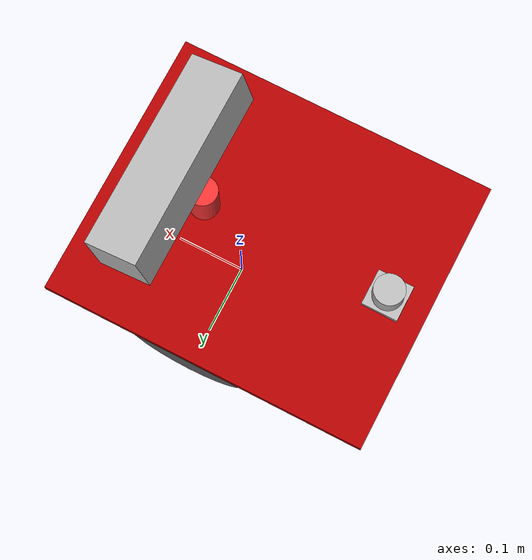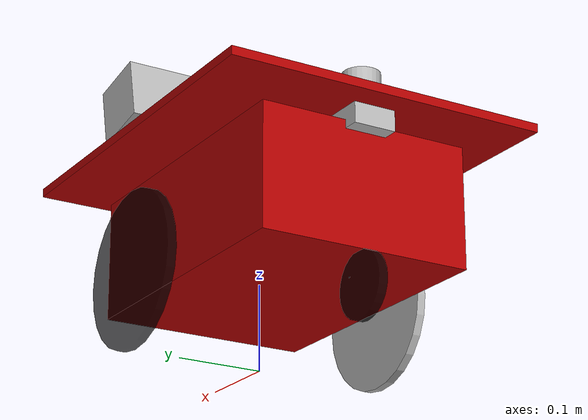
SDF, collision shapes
<?xml version='1.0'?>
<sdf version='1.6'>
    <model name='Nerpio_2wd'>
        <link name='chassis'>
            <pose frame=''>0 0 0 0 -0 0</pose>
            <inertial>
                <pose frame=''>-0.049981 0 0.000673 0 -0 0</pose>
                <mass>3.51011</mass>
                <inertia>
                    <ixx>3.00055</ixx>
                    <ixy>0</ixy>
                    <ixz>0</ixz>
                    <iyy>3.00055</iyy>
                    <iyz>0</iyz>
                    <izz>3</izz>
                </inertia>
            </inertial>
            <self_collide>0</self_collide>
            <kinematic>0</kinematic>
            <visual name='visual'>
                <pose frame=''>-0.045 0 0.148 0 -0 0</pose>
                <geometry>
                    <mesh>
                        <scale>1 1 1</scale>
                        <uri>model://nerpio_2wd/meshes/chassis.stl</uri>
                    </mesh>
                </geometry>
                <cast_shadows>1</cast_shadows>
                <transparency>0</transparency>
                <material>
                    <ambient>1 0.2 0.2 0</ambient>
                    <diffuse>0.7 0 0 0</diffuse>
                    <specular>1 0.2 0.2 1</specular>
                    <emissive>0 0 0 1</emissive>
                    <script>
                        <name>ModelPreview_1::chassis::visual_MATERIAL_</name>
                        <uri>__default__</uri>
                    </script>
                    <shader type='vertex'>
                        <normal_map>__default__</normal_map>
                    </shader>
                </material>
            </visual>
            <visual name='front_sonar_vis_visual_1'>
                <pose frame=''>0.109 0 0.209 0 -0 0</pose>
                <geometry>
                    <mesh>
                        <scale>1 1 1</scale>
                        <uri>model://nerpio_2wd/meshes/front_sonar.stl</uri>
                    </mesh>
                </geometry>
                <cast_shadows>1</cast_shadows>
                <transparency>0</transparency>
                <material>
                    <shader type='vertex'>
                        <normal_map>__default__</normal_map>
                    </shader>
                    <ambient>0.7 0.7 0 0</ambient>
                    <diffuse>0.7 0.7 0 0</diffuse>
                    <specular>0.7 0.7 0 0</specular>
                    <emissive>0 0 0 1</emissive>
                    <script>
                        <name>ModelPreview_1::chassis::front_sonar_vis_visual_1_MATERIAL_</name>
                        <uri>__default__</uri>
                    </script>
                </material>
            </visual>
            <visual name='visual_2'>
                <pose frame=''>-0.045 0 0.234 0 -0 0</pose>
                <geometry>
                    <mesh>
                        <scale>1 1 1</scale>
                        <uri>model://nerpio_2wd/meshes/top.stl</uri>
                    </mesh>
                </geometry>
                <cast_shadows>1</cast_shadows>
                <transparency>0</transparency>
                <material>
                    <shader type='vertex'>
                        <normal_map>__default__</normal_map>
                    </shader>
                    <ambient>0 0 0 1</ambient>
                    <diffuse>0 0 0 0.7</diffuse>
                    <specular>0 0 0 1</specular>
                    <emissive>0 0 0 1</emissive>
                    <script>
                        <name>ModelPreview_1::chassis::visual_2_MATERIAL_</name>
                        <uri>__default__</uri>
                    </script>
                </material>
            </visual>
            <collision name='collision'>
                <laser_retro>0</laser_retro>
                <max_contacts>10</max_contacts>
                <pose frame=''>-0.045 0 0.145 0 -0 0</pose>
                <geometry>
                    <box>
                        <size>0.35 0.25 0.14</size>
                    </box>
                </geometry>
                <surface>
                    <friction>
                        <ode>
                            <mu>1</mu>
                            <mu2>1</mu2>
                            <fdir1>0 0 0</fdir1>
                            <slip1>0</slip1>
                            <slip2>0</slip2>
                        </ode>
                        <torsional>
                            <coefficient>1</coefficient>
                            <patch_radius>0</patch_radius>
                            <surface_radius>0</surface_radius>
                            <use_patch_radius>1</use_patch_radius>
                            <ode>
                                <slip>0</slip>
                            </ode>
                        </torsional>
                    </friction>
                    <bounce>
                        <restitution_coefficient>0</restitution_coefficient>
                        <threshold>1e+06</threshold>
                    </bounce>
                    <contact>
                        <collide_without_contact>0</collide_without_contact>
                        <collide_without_contact_bitmask>1</collide_without_contact_bitmask>
                        <collide_bitmask>1</collide_bitmask>
                        <ode>
                            <soft_cfm>0</soft_cfm>
                            <soft_erp>0.2</soft_erp>
                            <kp>1e+13</kp>
                            <kd>1</kd>
                            <max_vel>0.01</max_vel>
                            <min_depth>0</min_depth>
                        </ode>
                        <bullet>
                            <split_impulse>1</split_impulse>
                            <split_impulse_penetration_threshold>-0.01</split_impulse_penetration_threshold>
                            <soft_cfm>0</soft_cfm>
                            <soft_erp>0.2</soft_erp>
                            <kp>1e+13</kp>
                            <kd>1</kd>
                        </bullet>
                    </contact>
                </surface>
            </collision>
            <collision name='top_plate_collision_2'>
                <laser_retro>0</laser_retro>
                <max_contacts>10</max_contacts>
                <pose frame=''>-0.045 0 0.234 0 -0 0</pose>
                <geometry>
                    <box>
                        <size>0.45 0.38 0.01</size>
                    </box>
                </geometry>
                <surface>
                    <friction>
                        <ode>
                            <mu>1</mu>
                            <mu2>1</mu2>
                            <fdir1>0 0 0</fdir1>
                            <slip1>0</slip1>
                            <slip2>0</slip2>
                        </ode>
                        <torsional>
                            <coefficient>1</coefficient>
                            <patch_radius>0</patch_radius>
                            <surface_radius>0</surface_radius>
                            <use_patch_radius>1</use_patch_radius>
                            <ode>
                                <slip>0</slip>
                            </ode>
                        </torsional>
                    </friction>
                    <bounce>
                        <restitution_coefficient>0</restitution_coefficient>
                        <threshold>1e+06</threshold>
                    </bounce>
                    <contact>
                        <collide_without_contact>0</collide_without_contact>
                        <collide_without_contact_bitmask>1</collide_without_contact_bitmask>
                        <collide_bitmask>1</collide_bitmask>
                        <ode>
                            <soft_cfm>0</soft_cfm>
                            <soft_erp>0.2</soft_erp>
                            <kp>1e+13</kp>
                            <kd>1</kd>
                            <max_vel>0.01</max_vel>
                            <min_depth>0</min_depth>
                        </ode>
                        <bullet>
                            <split_impulse>1</split_impulse>
                            <split_impulse_penetration_threshold>-0.01</split_impulse_penetration_threshold>
                            <soft_cfm>0</soft_cfm>
                            <soft_erp>0.2</soft_erp>
                            <kp>1e+13</kp>
                            <kd>1</kd>
                        </bullet>
                    </contact>
                </surface>
            </collision>
            <collision name='front_sonar_collision_1'>
                <laser_retro>0</laser_retro>
                <max_contacts>10</max_contacts>
                <pose frame=''>0.109 0 0.209 0 -0 0</pose>
                <geometry>
                    <box>
                        <size>0.001 0.001 0.001</size>
                    </box>
                </geometry>
                <surface>
                    <friction>
                        <ode>
                            <mu>1</mu>
                            <mu2>1</mu2>
                            <fdir1>0 0 0</fdir1>
                            <slip1>0</slip1>
                            <slip2>0</slip2>
                        </ode>
                        <torsional>
                            <coefficient>1</coefficient>
                            <patch_radius>0</patch_radius>
                            <surface_radius>0</surface_radius>
                            <use_patch_radius>1</use_patch_radius>
                            <ode>
                                <slip>0</slip>
                            </ode>
                        </torsional>
                    </friction>
                    <bounce>
                        <restitution_coefficient>0</restitution_coefficient>
                        <threshold>1e+06</threshold>
                    </bounce>
                    <contact>
                        <collide_without_contact>0</collide_without_contact>
                        <collide_without_contact_bitmask>1</collide_without_contact_bitmask>
                        <collide_bitmask>1</collide_bitmask>
                        <ode>
                            <soft_cfm>0</soft_cfm>
                            <soft_erp>0.2</soft_erp>
                            <kp>1e+13</kp>
                            <kd>1</kd>
                            <max_vel>0.01</max_vel>
                            <min_depth>0</min_depth>
                        </ode>
                        <bullet>
                            <split_impulse>1</split_impulse>
                            <split_impulse_penetration_threshold>-0.01</split_impulse_penetration_threshold>
                            <soft_cfm>0</soft_cfm>
                            <soft_erp>0.2</soft_erp>
                            <kp>1e+13</kp>
                            <kd>1</kd>
                        </bullet>
                    </contact>
                </surface>
            </collision>
        </link>
        <link name='center_wheel'>
            <pose frame=''>-0.211 -0 0.039 0 -0 0</pose>
            <inertial>
                <pose frame=''>-0.000318 0 -9.1e-05 0 -0 0</pose>
                <mass>0.11</mass>
                <inertia>
                    <ixx>0.0248235</ixx>
                    <ixy>0</ixy>
                    <ixz>0.00100543</ixz>
                    <iyy>0.0304364</iyy>
                    <iyz>0</iyz>
                    <izz>0.0235281</izz>
                </inertia>
            </inertial>
            <self_collide>0</self_collide>
            <kinematic>0</kinematic>
            <visual name='center_wheel_fixed_joint_lump__base_visual_visual'>
                <pose frame=''>0 0 0 0 -0 0</pose>
                <geometry>
                    <mesh>
                        <scale>1 1 1</scale>
                        <uri>model://nerpio_2wd/meshes/center_wheel.stl</uri>
                    </mesh>
                </geometry>
                <cast_shadows>1</cast_shadows>
                <transparency>0</transparency>
                <material>
                    <ambient>0 0 0 1</ambient>
                    <diffuse>0 0 0 0.7</diffuse>
                    <specular>0 0 0 1</specular>
                    <emissive>0 0 0 1</emissive>
                    <script>
                        <name>ModelPreview_1::center_wheel::center_wheel_fixed_joint_lump__base_visual_visual_MATERIAL_</name>
                        <uri>__default__</uri>
                    </script>
                    <shader type='vertex'>
                        <normal_map>__default__</normal_map>
                    </shader>
                </material>
            </visual>
            <visual name='center_wheel_fixed_joint_lump__base_visual_visual_1'>
                <pose frame=''>-0.0035 0 -0.001 0 -0 0</pose>
                <geometry>
                    <mesh>
                        <scale>1 1 1</scale>
                        <uri>model://nerpio_2wd/meshes/center_hubcap.stl</uri>
                    </mesh>
                </geometry>
                <cast_shadows>1</cast_shadows>
                <transparency>0</transparency>
                <material>
                    <shader type='vertex'>
                        <normal_map>__default__</normal_map>
                    </shader>
                    <ambient>1 1 1 0</ambient>
                    <diffuse>0.7 0.7 0.7 0</diffuse>
                    <specular>1 1 1 1</specular>
                    <emissive>0 0 0 1</emissive>
                    <script>
                        <name>ModelPreview_1::center_wheel::center_wheel_fixed_joint_lump__base_visual_visual_1_MATERIAL_</name>
                        <uri>__default__</uri>
                    </script>
                </material>
            </visual>
            <collision name='center_wheel_collision'>
                <laser_retro>0</laser_retro>
                <max_contacts>10</max_contacts>
                <pose frame=''>0 0 0 -1.5708 0 0</pose>
                <geometry>
                    <cylinder>
                        <radius>0.0375</radius>
                        <length>0.01</length>
                    </cylinder>
                </geometry>
                <surface>
                    <friction>
                        <ode>
                            <mu>10</mu>
                            <mu2>10</mu2>
                            <fdir1>0 0 0</fdir1>
                            <slip1>0</slip1>
                            <slip2>0</slip2>
                        </ode>
                        <torsional>
                            <coefficient>1</coefficient>
                            <patch_radius>0</patch_radius>
                            <surface_radius>0</surface_radius>
                            <use_patch_radius>1</use_patch_radius>
                            <ode>
                                <slip>0</slip>
                            </ode>
                        </torsional>
                    </friction>
                    <bounce>
                        <restitution_coefficient>0</restitution_coefficient>
                        <threshold>1e+06</threshold>
                    </bounce>
                    <contact>
                        <collide_without_contact>0</collide_without_contact>
                        <collide_without_contact_bitmask>1</collide_without_contact_bitmask>
                        <collide_bitmask>1</collide_bitmask>
                        <ode>
                            <soft_cfm>0</soft_cfm>
                            <soft_erp>0.2</soft_erp>
                            <kp>1e+06</kp>
                            <kd>1</kd>
                            <max_vel>0.01</max_vel>
                            <min_depth>0</min_depth>
                        </ode>
                        <bullet>
                            <split_impulse>1</split_impulse>
                            <split_impulse_penetration_threshold>-0.01</split_impulse_penetration_threshold>
                            <soft_cfm>0</soft_cfm>
                            <soft_erp>0.2</soft_erp>
                            <kp>1e+06</kp>
                            <kd>1</kd>
                        </bullet>
                    </contact>
                </surface>
            </collision>
            <collision name='center_wheel_fixed_joint_lump__center_hubcap_collision_1'>
                <laser_retro>0</laser_retro>
                <max_contacts>10</max_contacts>
                <pose frame=''>-0.0035 0 -0.001 0 -0 0</pose>
                <geometry>
                    <box>
                        <size>0.001 0.001 0.001</size>
                    </box>
                </geometry>
                <surface>
                    <friction>
                        <ode>
                            <mu>1</mu>
                            <mu2>1</mu2>
                            <fdir1>0 0 0</fdir1>
                            <slip1>0</slip1>
                            <slip2>0</slip2>
                        </ode>
                        <torsional>
                            <coefficient>1</coefficient>
                            <patch_radius>0</patch_radius>
                            <surface_radius>0</surface_radius>
                            <use_patch_radius>1</use_patch_radius>
                            <ode>
                                <slip>0</slip>
                            </ode>
                        </torsional>
                    </friction>
                    <bounce>
                        <restitution_coefficient>0</restitution_coefficient>
                        <threshold>1e+06</threshold>
                    </bounce>
                    <contact>
                        <collide_without_contact>0</collide_without_contact>
                        <collide_without_contact_bitmask>1</collide_without_contact_bitmask>
                        <collide_bitmask>1</collide_bitmask>
                        <ode>
                            <soft_cfm>0</soft_cfm>
                            <soft_erp>0.2</soft_erp>
                            <kp>1e+13</kp>
                            <kd>1</kd>
                            <max_vel>0.01</max_vel>
                            <min_depth>0</min_depth>
                        </ode>
                        <bullet>
                            <split_impulse>1</split_impulse>
                            <split_impulse_penetration_threshold>-0.01</split_impulse_penetration_threshold>
                            <soft_cfm>0</soft_cfm>
                            <soft_erp>0.2</soft_erp>
                            <kp>1e+13</kp>
                            <kd>1</kd>
                        </bullet>
                    </contact>
                </surface>
            </collision>
        </link>
        <link name='hokuyo2::link'>
            <pose frame=''>-0.213531 0.000101 0.24 0 -0 3.14</pose>
            <inertial>
                <mass>0.1</mass>
                <inertia>
                    <ixx>1</ixx>
                    <ixy>0</ixy>
                    <ixz>0</ixz>
                    <iyy>1</iyy>
                    <iyz>0</iyz>
                    <izz>1</izz>
                </inertia>
                <pose frame=''>0 0 0 0 -0 0</pose>
            </inertial>
            <self_collide>0</self_collide>
            <kinematic>0</kinematic>
            <sensor name='laser' type='ray'>
                <pose frame=''>0.01 0 0.0175 0 -0 0</pose>
                <ray>
                    <scan>
                        <horizontal>
                            <samples>520</samples>
                            <resolution>1</resolution>
                            <min_angle>-2.26889</min_angle>
                            <max_angle>2.2689</max_angle>
                        </horizontal>
                        <vertical>
                            <samples>1</samples>
                            <min_angle>0</min_angle>
                            <max_angle>0</max_angle>
                        </vertical>
                    </scan>
                    <range>
                        <min>0.08</min>
                        <max>10</max>
                        <resolution>0.01</resolution>
                    </range>
                </ray>
                <plugin name='laser' filename='libgazebo_ros_laser.so'>
                    <topicName>/nerpio/rearscan</topicName>
                    <frameName>/hokuyo_rear_link</frameName>
                </plugin>
                <always_on>1</always_on>
                <update_rate>30</update_rate>
                <visualize>1</visualize>
            </sensor>
            <gravity>1</gravity>
            <visual name='visual'>
                <geometry>
                    <mesh>
                        <uri>model://nerpio_2wd/meshes/hokuyo.dae</uri>
                    </mesh>
                </geometry>
                <material>
                    <shader type='pixel'>
                        <normal_map>__default__</normal_map>
                    </shader>
                    <emissive>0 0 0 1</emissive>
                </material>
                <pose frame=''>0 0 0 0 -0 0</pose>
                <cast_shadows>1</cast_shadows>
                <transparency>0</transparency>
            </visual>
            <collision name='collision-base'>
                <laser_retro>0</laser_retro>
                <max_contacts>10</max_contacts>
                <pose frame=''>0 0 -0.0145 0 -0 0</pose>
                <geometry>
                    <box>
                        <size>0.05 0.05 0.041</size>
                    </box>
                </geometry>
                <surface>
                    <friction>
                        <ode>
                            <mu>1</mu>
                            <mu2>1</mu2>
                            <fdir1>0 0 0</fdir1>
                            <slip1>0</slip1>
                            <slip2>0</slip2>
                        </ode>
                        <torsional>
                            <coefficient>1</coefficient>
                            <patch_radius>0</patch_radius>
                            <surface_radius>0</surface_radius>
                            <use_patch_radius>1</use_patch_radius>
                            <ode>
                                <slip>0</slip>
                            </ode>
                        </torsional>
                    </friction>
                    <bounce>
                        <restitution_coefficient>0</restitution_coefficient>
                        <threshold>1e+06</threshold>
                    </bounce>
                    <contact>
                        <collide_without_contact>0</collide_without_contact>
                        <collide_without_contact_bitmask>1</collide_without_contact_bitmask>
                        <collide_bitmask>1</collide_bitmask>
                        <ode>
                            <soft_cfm>0</soft_cfm>
                            <soft_erp>0.2</soft_erp>
                            <kp>1e+13</kp>
                            <kd>1</kd>
                            <max_vel>0.01</max_vel>
                            <min_depth>0</min_depth>
                        </ode>
                        <bullet>
                            <split_impulse>1</split_impulse>
                            <split_impulse_penetration_threshold>-0.01</split_impulse_penetration_threshold>
                            <soft_cfm>0</soft_cfm>
                            <soft_erp>0.2</soft_erp>
                            <kp>1e+13</kp>
                            <kd>1</kd>
                        </bullet>
                    </contact>
                </surface>
            </collision>
            <collision name='collision-top'>
                <laser_retro>0</laser_retro>
                <max_contacts>10</max_contacts>
                <pose frame=''>0 0 0.0205 0 -0 0</pose>
                <geometry>
                    <cylinder>
                        <radius>0.021</radius>
                        <length>0.029</length>
                    </cylinder>
                </geometry>
                <surface>
                    <friction>
                        <ode>
                            <mu>1</mu>
                            <mu2>1</mu2>
                            <fdir1>0 0 0</fdir1>
                            <slip1>0</slip1>
                            <slip2>0</slip2>
                        </ode>
                        <torsional>
                            <coefficient>1</coefficient>
                            <patch_radius>0</patch_radius>
                            <surface_radius>0</surface_radius>
                            <use_patch_radius>1</use_patch_radius>
                            <ode>
                                <slip>0</slip>
                            </ode>
                        </torsional>
                    </friction>
                    <bounce>
                        <restitution_coefficient>0</restitution_coefficient>
                        <threshold>1e+06</threshold>
                    </bounce>
                    <contact>
                        <collide_without_contact>0</collide_without_contact>
                        <collide_without_contact_bitmask>1</collide_without_contact_bitmask>
                        <collide_bitmask>1</collide_bitmask>
                        <ode>
                            <soft_cfm>0</soft_cfm>
                            <soft_erp>0.2</soft_erp>
                            <kp>1e+13</kp>
                            <kd>1</kd>
                            <max_vel>0.01</max_vel>
                            <min_depth>0</min_depth>
                        </ode>
                        <bullet>
                            <split_impulse>1</split_impulse>
                            <split_impulse_penetration_threshold>-0.01</split_impulse_penetration_threshold>
                            <soft_cfm>0</soft_cfm>
                            <soft_erp>0.2</soft_erp>
                            <kp>1e+13</kp>
                            <kd>1</kd>
                        </bullet>
                    </contact>
                </surface>
            </collision>
        </link>
        <link name='hokuyo::link'>
            <pose frame=''>0.132659 0 0.24 0 -0 0</pose>
            <inertial>
                <mass>0.1</mass>
                <inertia>
                    <ixx>1</ixx>
                    <ixy>0</ixy>
                    <ixz>0</ixz>
                    <iyy>1</iyy>
                    <iyz>0</iyz>
                    <izz>1</izz>
                </inertia>
                <pose frame=''>0 0 0 0 -0 0</pose>
            </inertial>
            <self_collide>0</self_collide>
            <kinematic>0</kinematic>
            <sensor name='laser' type='ray'>
                <pose frame=''>0.01 0 0.0175 0 -0 0</pose>
                <ray>
                    <scan>
                        <horizontal>
                            <samples>520</samples>
                            <resolution>1</resolution>
                            <min_angle>-2.26889</min_angle>
                            <max_angle>2.2689</max_angle>
                        </horizontal>
                        <vertical>
                            <samples>1</samples>
                            <min_angle>0</min_angle>
                            <max_angle>0</max_angle>
                        </vertical>
                    </scan>
                    <range>
                        <min>0.08</min>
                        <max>10</max>
                        <resolution>0.01</resolution>
                    </range>
                </ray>
                <plugin name='laser' filename='libgazebo_ros_laser.so'>
                    <topicName>/nerpio/frontscan</topicName>
                    <frameName>/hokuyo_front_link</frameName>
                </plugin>
                <always_on>1</always_on>
                <update_rate>30</update_rate>
                <visualize>1</visualize>
            </sensor>
            <gravity>1</gravity>
            <visual name='visual'>
                <geometry>
                    <mesh>
                        <uri>model://nerpio_2wd/meshes/hokuyo.dae</uri>
                    </mesh>
                </geometry>
                <material>
                    <shader type='pixel'>
                        <normal_map>__default__</normal_map>
                    </shader>
                </material>
                <pose frame=''>0 0 0 0 -0 0</pose>
                <cast_shadows>1</cast_shadows>
                <transparency>0</transparency>
            </visual>
            <collision name='collision-base'>
                <laser_retro>0</laser_retro>
                <max_contacts>10</max_contacts>
                <pose frame=''>0 0 -0.0145 0 -0 0</pose>
                <geometry>
                    <box>
                        <size>0.05 0.05 0.041</size>
                    </box>
                </geometry>
                <surface>
                    <friction>
                        <ode>
                            <mu>1</mu>
                            <mu2>1</mu2>
                            <fdir1>0 0 0</fdir1>
                            <slip1>0</slip1>
                            <slip2>0</slip2>
                        </ode>
                        <torsional>
                            <coefficient>1</coefficient>
                            <patch_radius>0</patch_radius>
                            <surface_radius>0</surface_radius>
                            <use_patch_radius>1</use_patch_radius>
                            <ode>
                                <slip>0</slip>
                            </ode>
                        </torsional>
                    </friction>
                    <bounce>
                        <restitution_coefficient>0</restitution_coefficient>
                        <threshold>1e+06</threshold>
                    </bounce>
                    <contact>
                        <collide_without_contact>0</collide_without_contact>
                        <collide_without_contact_bitmask>1</collide_without_contact_bitmask>
                        <collide_bitmask>1</collide_bitmask>
                        <ode>
                            <soft_cfm>0</soft_cfm>
                            <soft_erp>0.2</soft_erp>
                            <kp>1e+13</kp>
                            <kd>1</kd>
                            <max_vel>0.01</max_vel>
                            <min_depth>0</min_depth>
                        </ode>
                        <bullet>
                            <split_impulse>1</split_impulse>
                            <split_impulse_penetration_threshold>-0.01</split_impulse_penetration_threshold>
                            <soft_cfm>0</soft_cfm>
                            <soft_erp>0.2</soft_erp>
                            <kp>1e+13</kp>
                            <kd>1</kd>
                        </bullet>
                    </contact>
                </surface>
            </collision>
            <collision name='collision-top'>
                <laser_retro>0</laser_retro>
                <max_contacts>10</max_contacts>
                <pose frame=''>0 0 0.0205 0 -0 0</pose>
                <geometry>
                    <cylinder>
                        <radius>0.021</radius>
                        <length>0.029</length>
                    </cylinder>
                </geometry>
                <surface>
                    <friction>
                        <ode>
                            <mu>1</mu>
                            <mu2>1</mu2>
                            <fdir1>0 0 0</fdir1>
                            <slip1>0</slip1>
                            <slip2>0</slip2>
                        </ode>
                        <torsional>
                            <coefficient>1</coefficient>
                            <patch_radius>0</patch_radius>
                            <surface_radius>0</surface_radius>
                            <use_patch_radius>1</use_patch_radius>
                            <ode>
                                <slip>0</slip>
                            </ode>
                        </torsional>
                    </friction>
                    <bounce>
                        <restitution_coefficient>0</restitution_coefficient>
                        <threshold>1e+06</threshold>
                    </bounce>
                    <contact>
                        <collide_without_contact>0</collide_without_contact>
                        <collide_without_contact_bitmask>1</collide_without_contact_bitmask>
                        <collide_bitmask>1</collide_bitmask>
                        <ode>
                            <soft_cfm>0</soft_cfm>
                            <soft_erp>0.2</soft_erp>
                            <kp>1e+13</kp>
                            <kd>1</kd>
                            <max_vel>0.01</max_vel>
                            <min_depth>0</min_depth>
                        </ode>
                        <bullet>
                            <split_impulse>1</split_impulse>
                            <split_impulse_penetration_threshold>-0.01</split_impulse_penetration_threshold>
                            <soft_cfm>0</soft_cfm>
                            <soft_erp>0.2</soft_erp>
                            <kp>1e+13</kp>
                            <kd>1</kd>
                        </bullet>
                    </contact>
                </surface>
            </collision>
        </link>
        <link name='kinect::link'>
            <pose frame=''>0.093013 -0 0.327795 0 0.2 0</pose>
            <inertial>
                <mass>0.1</mass>
                <inertia>
                    <ixx>1</ixx>
                    <ixy>0</ixy>
                    <ixz>0</ixz>
                    <iyy>1</iyy>
                    <iyz>0</iyz>
                    <izz>1</izz>
                </inertia>
                <pose frame=''>0 0 0 0 -0 0</pose>
            </inertial>
            <self_collide>0</self_collide>
            <kinematic>0</kinematic>
            <sensor name='camera' type='depth'>
                <update_rate>20</update_rate>
                <camera name='__default__'>
                    <horizontal_fov>1.0472</horizontal_fov>
                    <image>
                        <width>640</width>
                        <height>480</height>
                        <format>R8G8B8</format>
                    </image>
                    <clip>
                        <near>0.05</near>
                        <far>3</far>
                    </clip>
                </camera>
                <plugin name='camera_plugin' filename='libgazebo_ros_openni_kinect.so'>
                    <baseline>0.2</baseline>
                    <alwaysOn>true</alwaysOn>
                    <updateRate>0.0</updateRate>
                    <cameraName>camera_ir</cameraName>
                    <imageTopicName>/camera/depth/image_raw</imageTopicName>
                    <cameraInfoTopicName>/camera/depth/camera_info</cameraInfoTopicName>
                    <depthImageTopicName>/camera/depth/image_raw</depthImageTopicName>
                    <depthImageInfoTopicName>/camera/depth/camera_info</depthImageInfoTopicName>
                    <pointCloudTopicName>/camera/depth/points</pointCloudTopicName>
                    <frameName>camera_link</frameName>
                    <pointCloudCutoff>0.05</pointCloudCutoff>
                    <distortionK1>0</distortionK1>
                    <distortionK2>0</distortionK2>
                    <distortionK3>0</distortionK3>
                    <distortionT1>0</distortionT1>
                    <distortionT2>0</distortionT2>
                    <CxPrime>0</CxPrime>
                    <Cx>0</Cx>
                    <Cy>0</Cy>
                    <focalLength>0</focalLength>
                    <hackBaseline>0</hackBaseline>
                </plugin>
                <always_on>1</always_on>
                <visualize>1</visualize>
            </sensor>
            <gravity>1</gravity>
            <visual name='visual'>
                <geometry>
                    <mesh>
                        <uri>model://nerpio_2wd/meshes/kinect.dae</uri>
                    </mesh>
                </geometry>
                <material>
                    <shader type='pixel'/>
                    <emissive>0 0 0 1</emissive>
                </material>
                <pose frame=''>0 0 0 0 -0 0</pose>
                <cast_shadows>1</cast_shadows>
                <transparency>0</transparency>
            </visual>
            <collision name='collision'>
                <laser_retro>0</laser_retro>
                <max_contacts>10</max_contacts>
                <pose frame=''>0 0 0 0 -0 0</pose>
                <geometry>
                    <box>
                        <size>0.073 0.276 0.072</size>
                    </box>
                </geometry>
                <surface>
                    <friction>
                        <ode>
                            <mu>1</mu>
                            <mu2>1</mu2>
                            <fdir1>0 0 0</fdir1>
                            <slip1>0</slip1>
                            <slip2>0</slip2>
                        </ode>
                        <torsional>
                            <coefficient>1</coefficient>
                            <patch_radius>0</patch_radius>
                            <surface_radius>0</surface_radius>
                            <use_patch_radius>1</use_patch_radius>
                            <ode>
                                <slip>0</slip>
                            </ode>
                        </torsional>
                    </friction>
                    <bounce>
                        <restitution_coefficient>0</restitution_coefficient>
                        <threshold>1e+06</threshold>
                    </bounce>
                    <contact>
                        <collide_without_contact>0</collide_without_contact>
                        <collide_without_contact_bitmask>1</collide_without_contact_bitmask>
                        <collide_bitmask>1</collide_bitmask>
                        <ode>
                            <soft_cfm>0</soft_cfm>
                            <soft_erp>0.2</soft_erp>
                            <kp>1e+13</kp>
                            <kd>1</kd>
                            <max_vel>0.01</max_vel>
                            <min_depth>0</min_depth>
                        </ode>
                        <bullet>
                            <split_impulse>1</split_impulse>
                            <split_impulse_penetration_threshold>-0.01</split_impulse_penetration_threshold>
                            <soft_cfm>0</soft_cfm>
                            <soft_erp>0.2</soft_erp>
                            <kp>1e+13</kp>
                            <kd>1</kd>
                        </bullet>
                    </contact>
                </surface>
            </collision>
        </link>
        <link name='link_0'>
            <pose frame=''>0.05 0 0.25 1e-06 0.002396 -0</pose>
            <inertial>
                <mass>1</mass>
                <inertia>
                    <ixx>0.145833</ixx>
                    <ixy>0</ixy>
                    <ixz>0</ixz>
                    <iyy>0.145833</iyy>
                    <iyz>0</iyz>
                    <izz>0.125</izz>
                </inertia>
                <pose frame=''>0 0 0 0 -0 0</pose>
            </inertial>
            <gravity>1</gravity>
            <self_collide>0</self_collide>
            <kinematic>0</kinematic>
            <visual name='visual'>
                <pose frame=''>0 0 0 0 -0 0</pose>
                <geometry>
                    <cylinder>
                        <radius>0.02</radius>
                        <length>0.1</length>
                    </cylinder>
                </geometry>
                <material>
                    <lighting>1</lighting>
                    <script>
                        <uri>file://media/materials/scripts/gazebo.material</uri>
                        <name>Gazebo/Grey</name>
                    </script>
                    <ambient>1 0.2 0.2 1</ambient>
                    <diffuse>1 0.2 0.2 1</diffuse>
                    <specular>1 0.2 0.2 1</specular>
                    <emissive>0 0 0 1</emissive>
                    <shader type='vertex'>
                        <normal_map>__default__</normal_map>
                    </shader>
                </material>
                <cast_shadows>1</cast_shadows>
                <transparency>0</transparency>
            </visual>
            <collision name='collision'>
                <laser_retro>0</laser_retro>
                <max_contacts>10</max_contacts>
                <pose frame=''>0 0 0 0 -0 0</pose>
                <geometry>
                    <cylinder>
                        <radius>0.02</radius>
                        <length>0.1</length>
                    </cylinder>
                </geometry>
                <surface>
                    <friction>
                        <ode>
                            <mu>1</mu>
                            <mu2>1</mu2>
                            <fdir1>0 0 0</fdir1>
                            <slip1>0</slip1>
                            <slip2>0</slip2>
                        </ode>
                        <torsional>
                            <coefficient>1</coefficient>
                            <patch_radius>0</patch_radius>
                            <surface_radius>0</surface_radius>
                            <use_patch_radius>1</use_patch_radius>
                            <ode>
                                <slip>0</slip>
                            </ode>
                        </torsional>
                    </friction>
                    <bounce>
                        <restitution_coefficient>0</restitution_coefficient>
                        <threshold>1e+06</threshold>
                    </bounce>
                    <contact>
                        <collide_without_contact>0</collide_without_contact>
                        <collide_without_contact_bitmask>1</collide_without_contact_bitmask>
                        <collide_bitmask>1</collide_bitmask>
                        <ode>
                            <soft_cfm>0</soft_cfm>
                            <soft_erp>0.2</soft_erp>
                            <kp>1e+13</kp>
                            <kd>1</kd>
                            <max_vel>0.01</max_vel>
                            <min_depth>0</min_depth>
                        </ode>
                        <bullet>
                            <split_impulse>1</split_impulse>
                            <split_impulse_penetration_threshold>-0.01</split_impulse_penetration_threshold>
                            <soft_cfm>0</soft_cfm>
                            <soft_erp>0.2</soft_erp>
                            <kp>1e+13</kp>
                            <kd>1</kd>
                        </bullet>
                    </contact>
                </surface>
            </collision>
        </link>
        <link name='p3dx_left_wheel'>
            <pose frame=''>0 0.158 0.091 0 -0 0</pose>
            <inertial>
                <pose frame=''>0 0 0 0 -0 0</pose>
                <mass>0.51</mass>
                <inertia>
                    <ixx>0.0248235</ixx>
                    <ixy>0</ixy>
                    <ixz>0</ixz>
                    <iyy>0.0304363</iyy>
                    <iyz>0</iyz>
                    <izz>0.023528</izz>
                </inertia>
            </inertial>
            <self_collide>0</self_collide>
            <kinematic>0</kinematic>
            <visual name='p3dx_left_wheel_fixed_joint_lump__base_visual_visual'>
                <pose frame=''>0 0 0 0 -0 0</pose>
                <geometry>
                    <mesh>
                        <scale>1 1 1</scale>
                        <uri>model://nerpio_2wd/meshes/left_wheel.stl</uri>
                    </mesh>
                </geometry>
                <cast_shadows>1</cast_shadows>
                <transparency>0</transparency>
                <material>
                    <ambient>0 0 0 1</ambient>
                    <diffuse>0 0 0 0.7</diffuse>
                    <specular>0 0 0 1</specular>
                    <emissive>0 0 0 1</emissive>
                    <script>
                        <name>ModelPreview_1::p3dx_left_wheel::p3dx_left_wheel_fixed_joint_lump__base_visual_visual_MATERIAL_</name>
                        <uri>__default__</uri>
                    </script>
                    <shader type='vertex'>
                        <normal_map>__default__</normal_map>
                    </shader>
                </material>
            </visual>
            <visual name='p3dx_left_wheel_fixed_joint_lump__base_visual_visual_1'>
                <pose frame=''>0 0 0 0 -0 0</pose>
                <geometry>
                    <mesh>
                        <scale>1 1 1</scale>
                        <uri>model://nerpio_2wd/meshes/left_hubcap.stl</uri>
                    </mesh>
                </geometry>
                <cast_shadows>1</cast_shadows>
                <transparency>0</transparency>
                <material>
                    <shader type='vertex'>
                        <normal_map>__default__</normal_map>
                    </shader>
                    <ambient>1 1 1 0</ambient>
                    <diffuse>0.7 0.7 0.7 0</diffuse>
                    <specular>1 1 1 1</specular>
                    <emissive>0 0 0 1</emissive>
                    <script>
                        <name>ModelPreview_1::p3dx_left_wheel::p3dx_left_wheel_fixed_joint_lump__base_visual_visual_1_MATERIAL_</name>
                        <uri>__default__</uri>
                    </script>
                </material>
            </visual>
            <collision name='p3dx_left_wheel_collision'>
                <laser_retro>0</laser_retro>
                <max_contacts>10</max_contacts>
                <pose frame=''>0 0 0 -1.5708 0 0</pose>
                <geometry>
                    <cylinder>
                        <radius>0.09</radius>
                        <length>0.01</length>
                    </cylinder>
                </geometry>
                <surface>
                    <friction>
                        <ode>
                            <mu>0.5</mu>
                            <mu2>50</mu2>
                            <fdir1>0 0 0</fdir1>
                            <slip1>0</slip1>
                            <slip2>0</slip2>
                        </ode>
                        <torsional>
                            <coefficient>1</coefficient>
                            <patch_radius>0</patch_radius>
                            <surface_radius>0</surface_radius>
                            <use_patch_radius>1</use_patch_radius>
                            <ode>
                                <slip>0</slip>
                            </ode>
                        </torsional>
                    </friction>
                    <bounce>
                        <restitution_coefficient>0</restitution_coefficient>
                        <threshold>1e+06</threshold>
                    </bounce>
                    <contact>
                        <collide_without_contact>0</collide_without_contact>
                        <collide_without_contact_bitmask>1</collide_without_contact_bitmask>
                        <collide_bitmask>1</collide_bitmask>
                        <ode>
                            <soft_cfm>0</soft_cfm>
                            <soft_erp>0.2</soft_erp>
                            <kp>1e+08</kp>
                            <kd>1</kd>
                            <max_vel>0.01</max_vel>
                            <min_depth>0</min_depth>
                        </ode>
                        <bullet>
                            <split_impulse>1</split_impulse>
                            <split_impulse_penetration_threshold>-0.01</split_impulse_penetration_threshold>
                            <soft_cfm>0</soft_cfm>
                            <soft_erp>0.2</soft_erp>
                            <kp>1e+08</kp>
                            <kd>1</kd>
                        </bullet>
                    </contact>
                </surface>
            </collision>
            <collision name='p3dx_left_wheel_fixed_joint_lump__p3dx_left_hubcap_collision_1'>
                <laser_retro>0</laser_retro>
                <max_contacts>10</max_contacts>
                <pose frame=''>0 0 0 0 -0 0</pose>
                <geometry>
                    <box>
                        <size>0.001 0.001 0.001</size>
                    </box>
                </geometry>
                <surface>
                    <friction>
                        <ode>
                            <mu>1</mu>
                            <mu2>1</mu2>
                            <fdir1>0 0 0</fdir1>
                            <slip1>0</slip1>
                            <slip2>0</slip2>
                        </ode>
                        <torsional>
                            <coefficient>1</coefficient>
                            <patch_radius>0</patch_radius>
                            <surface_radius>0</surface_radius>
                            <use_patch_radius>1</use_patch_radius>
                            <ode>
                                <slip>0</slip>
                            </ode>
                        </torsional>
                    </friction>
                    <bounce>
                        <restitution_coefficient>0</restitution_coefficient>
                        <threshold>1e+06</threshold>
                    </bounce>
                    <contact>
                        <collide_without_contact>0</collide_without_contact>
                        <collide_without_contact_bitmask>1</collide_without_contact_bitmask>
                        <collide_bitmask>1</collide_bitmask>
                        <ode>
                            <soft_cfm>0</soft_cfm>
                            <soft_erp>0.2</soft_erp>
                            <kp>1e+13</kp>
                            <kd>1</kd>
                            <max_vel>0.01</max_vel>
                            <min_depth>0</min_depth>
                        </ode>
                        <bullet>
                            <split_impulse>1</split_impulse>
                            <split_impulse_penetration_threshold>-0.01</split_impulse_penetration_threshold>
                            <soft_cfm>0</soft_cfm>
                            <soft_erp>0.2</soft_erp>
                            <kp>1e+13</kp>
                            <kd>1</kd>
                        </bullet>
                    </contact>
                </surface>
            </collision>
        </link>
        <link name='p3dx_right_wheel'>
            <pose frame=''>0 -0.158 0.091 0 -0 0</pose>
            <inertial>
                <pose frame=''>0 0 0 0 -0 0</pose>
                <mass>0.51</mass>
                <inertia>
                    <ixx>0.0248235</ixx>
                    <ixy>0</ixy>
                    <ixz>0</ixz>
                    <iyy>0.0304363</iyy>
                    <iyz>0</iyz>
                    <izz>0.023528</izz>
                </inertia>
            </inertial>
            <self_collide>0</self_collide>
            <kinematic>0</kinematic>
            <visual name='p3dx_right_wheel_fixed_joint_lump__base_visual_visual_1'>
                <pose frame=''>0 0 0 0 -0 0</pose>
                <geometry>
                    <mesh>
                        <scale>1 1 1</scale>
                        <uri>model://nerpio_2wd/meshes/right_hubcap.stl</uri>
                    </mesh>
                </geometry>
                <cast_shadows>1</cast_shadows>
                <transparency>0</transparency>
                <material>
                    <shader type='vertex'>
                        <normal_map>__default__</normal_map>
                    </shader>
                    <ambient>1 1 1 0</ambient>
                    <diffuse>0.7 0.7 0.7 0</diffuse>
                    <specular>1 1 1 1</specular>
                    <emissive>0 0 0 1</emissive>
                    <script>
                        <name>ModelPreview_1::p3dx_right_wheel::p3dx_right_wheel_fixed_joint_lump__base_visual_visual_1_MATERIAL_</name>
                        <uri>__default__</uri>
                    </script>
                </material>
            </visual>
            <visual name='p3dx_right_wheel_fixed_joint_lump__base_visual_visual'>
                <pose frame=''>0 0 0 0 -0 0</pose>
                <geometry>
                    <mesh>
                        <scale>1 1 1</scale>
                        <uri>model://nerpio_2wd/meshes/right_wheel.stl</uri>
                    </mesh>
                </geometry>
                <cast_shadows>1</cast_shadows>
                <transparency>0</transparency>
                <material>
                    <shader type='vertex'>
                        <normal_map>__default__</normal_map>
                    </shader>
                    <ambient>0 0 0 1</ambient>
                    <diffuse>0 0 0 0.7</diffuse>
                    <specular>0 0 0 1</specular>
                    <emissive>0 0 0 1</emissive>
                    <script>
                        <name>ModelPreview_1::p3dx_right_wheel::p3dx_right_wheel_fixed_joint_lump__base_visual_visual_MATERIAL_</name>
                        <uri>__default__</uri>
                    </script>
                </material>
            </visual>
            <collision name='p3dx_right_wheel_collision'>
                <laser_retro>0</laser_retro>
                <max_contacts>10</max_contacts>
                <pose frame=''>0 0 0 -1.5708 0 0</pose>
                <geometry>
                    <cylinder>
                        <radius>0.09</radius>
                        <length>0.01</length>
                    </cylinder>
                </geometry>
                <surface>
                    <friction>
                        <ode>
                            <mu>0.5</mu>
                            <mu2>50</mu2>
                            <fdir1>0 0 0</fdir1>
                            <slip1>0</slip1>
                            <slip2>0</slip2>
                        </ode>
                        <torsional>
                            <coefficient>1</coefficient>
                            <patch_radius>0</patch_radius>
                            <surface_radius>0</surface_radius>
                            <use_patch_radius>1</use_patch_radius>
                            <ode>
                                <slip>0</slip>
                            </ode>
                        </torsional>
                    </friction>
                    <bounce>
                        <restitution_coefficient>0</restitution_coefficient>
                        <threshold>1e+06</threshold>
                    </bounce>
                    <contact>
                        <collide_without_contact>0</collide_without_contact>
                        <collide_without_contact_bitmask>1</collide_without_contact_bitmask>
                        <collide_bitmask>1</collide_bitmask>
                        <ode>
                            <soft_cfm>0</soft_cfm>
                            <soft_erp>0.2</soft_erp>
                            <kp>1e+08</kp>
                            <kd>1</kd>
                            <max_vel>0.01</max_vel>
                            <min_depth>0</min_depth>
                        </ode>
                        <bullet>
                            <split_impulse>1</split_impulse>
                            <split_impulse_penetration_threshold>-0.01</split_impulse_penetration_threshold>
                            <soft_cfm>0</soft_cfm>
                            <soft_erp>0.2</soft_erp>
                            <kp>1e+08</kp>
                            <kd>1</kd>
                        </bullet>
                    </contact>
                </surface>
            </collision>
            <collision name='p3dx_right_wheel_fixed_joint_lump__p3dx_right_hubcap_collision_1'>
                <laser_retro>0</laser_retro>
                <max_contacts>10</max_contacts>
                <pose frame=''>0 0 0 0 -0 0</pose>
                <geometry>
                    <box>
                        <size>0.001 0.001 0.001</size>
                    </box>
                </geometry>
                <surface>
                    <friction>
                        <ode>
                            <mu>1</mu>
                            <mu2>1</mu2>
                            <fdir1>0 0 0</fdir1>
                            <slip1>0</slip1>
                            <slip2>0</slip2>
                        </ode>
                        <torsional>
                            <coefficient>1</coefficient>
                            <patch_radius>0</patch_radius>
                            <surface_radius>0</surface_radius>
                            <use_patch_radius>1</use_patch_radius>
                            <ode>
                                <slip>0</slip>
                            </ode>
                        </torsional>
                    </friction>
                    <bounce>
                        <restitution_coefficient>0</restitution_coefficient>
                        <threshold>1e+06</threshold>
                    </bounce>
                    <contact>
                        <collide_without_contact>0</collide_without_contact>
                        <collide_without_contact_bitmask>1</collide_without_contact_bitmask>
                        <collide_bitmask>1</collide_bitmask>
                        <ode>
                            <soft_cfm>0</soft_cfm>
                            <soft_erp>0.2</soft_erp>
                            <kp>1e+13</kp>
                            <kd>1</kd>
                            <max_vel>0.01</max_vel>
                            <min_depth>0</min_depth>
                        </ode>
                        <bullet>
                            <split_impulse>1</split_impulse>
                            <split_impulse_penetration_threshold>-0.01</split_impulse_penetration_threshold>
                            <soft_cfm>0</soft_cfm>
                            <soft_erp>0.2</soft_erp>
                            <kp>1e+13</kp>
                            <kd>1</kd>
                        </bullet>
                    </contact>
                </surface>
            </collision>
        </link>
        <link name='swivel'>
            <pose frame=''>-0.185 -0 0.055 0 -0 0</pose>
            <inertial>
                <pose frame=''>0 0 0 0 -0 0</pose>
                <mass>0.1</mass>
                <inertia>
                    <ixx>0.01</ixx>
                    <ixy>0</ixy>
                    <ixz>0</ixz>
                    <iyy>0.01</iyy>
                    <iyz>0</iyz>
                    <izz>0.01</izz>
                </inertia>
            </inertial>
            <self_collide>0</self_collide>
            <kinematic>0</kinematic>
            <visual name='swivel_fixed_joint_lump__base_visual_visual'>
                <pose frame=''>0 0 0 0 -0 0</pose>
                <geometry>
                    <mesh>
                        <scale>1 1 1</scale>
                        <uri>model://nerpio_2wd/meshes/swivel.stl</uri>
                    </mesh>
                </geometry>
                <cast_shadows>1</cast_shadows>
                <transparency>0</transparency>
            </visual>
            <collision name='swivel_collision'>
                <laser_retro>0</laser_retro>
                <max_contacts>10</max_contacts>
                <pose frame=''>0 0 0 0 -0 0</pose>
                <geometry>
                    <box>
                        <size>0.001 0.001 0.001</size>
                    </box>
                </geometry>
                <surface>
                    <friction>
                        <ode>
                            <mu>1</mu>
                            <mu2>1</mu2>
                            <fdir1>0 0 0</fdir1>
                            <slip1>0</slip1>
                            <slip2>0</slip2>
                        </ode>
                        <torsional>
                            <coefficient>1</coefficient>
                            <patch_radius>0</patch_radius>
                            <surface_radius>0</surface_radius>
                            <use_patch_radius>1</use_patch_radius>
                            <ode>
                                <slip>0</slip>
                            </ode>
                        </torsional>
                    </friction>
                    <bounce>
                        <restitution_coefficient>0</restitution_coefficient>
                        <threshold>1e+06</threshold>
                    </bounce>
                    <contact>
                        <collide_without_contact>0</collide_without_contact>
                        <collide_without_contact_bitmask>1</collide_without_contact_bitmask>
                        <collide_bitmask>1</collide_bitmask>
                        <ode>
                            <soft_cfm>0</soft_cfm>
                            <soft_erp>0.2</soft_erp>
                            <kp>1e+13</kp>
                            <kd>1</kd>
                            <max_vel>0.01</max_vel>
                            <min_depth>0</min_depth>
                        </ode>
                        <bullet>
                            <split_impulse>1</split_impulse>
                            <split_impulse_penetration_threshold>-0.01</split_impulse_penetration_threshold>
                            <soft_cfm>0</soft_cfm>
                            <soft_erp>0.2</soft_erp>
                            <kp>1e+13</kp>
                            <kd>1</kd>
                        </bullet>
                    </contact>
                </surface>
            </collision>
        </link>
        <joint name='base_left_wheel_joint' type='revolute'>
            <parent>chassis</parent>
            <child>p3dx_left_wheel</child>
            <pose frame=''>0 0 0 0 -0 0</pose>
            <axis>
                <xyz>0 1 0</xyz>
                <use_parent_model_frame>1</use_parent_model_frame>
                <limit>
                    <lower>-1e+16</lower>
                    <upper>1e+16</upper>
                    <effort>-1</effort>
                    <velocity>-1</velocity>
                </limit>
                <dynamics>
                    <spring_reference>0</spring_reference>
                    <spring_stiffness>0</spring_stiffness>
                    <damping>0</damping>
                    <friction>0</friction>
                </dynamics>
            </axis>
            <physics>
                <ode>
                    <limit>
                        <cfm>0</cfm>
                        <erp>0.2</erp>
                    </limit>
                    <suspension>
                        <cfm>0</cfm>
                        <erp>0.2</erp>
                    </suspension>
                </ode>
            </physics>
        </joint>
        <joint name='base_rear_hokuyo' type='fixed'>
            <parent>chassis</parent>
            <child>hokuyo2::link</child>
            <pose frame=''>0 0 0 0 -0 0</pose>
            <physics>
                <ode>
                    <limit>
                        <cfm>0</cfm>
                        <erp>0.2</erp>
                    </limit>
                    <suspension>
                        <cfm>0</cfm>
                        <erp>0.2</erp>
                    </suspension>
                </ode>
            </physics>
        </joint>
        <joint name='base_front_hokuyo' type='fixed'>
            <parent>chassis</parent>
            <child>hokuyo::link</child>
            <pose frame=''>0 0 0 0 -0 0</pose>
            <physics>
                <ode>
                    <limit>
                        <cfm>0</cfm>
                        <erp>0.2</erp>
                    </limit>
                    <suspension>
                        <cfm>0</cfm>
                        <erp>0.2</erp>
                    </suspension>
                </ode>
            </physics>
        </joint>
        <joint name='JOINT_1' type='fixed'>
            <parent>chassis</parent>
            <child>link_0</child>
            <pose frame=''>0 0 0 0 -0 0</pose>
            <physics>
                <ode>
                    <limit>
                        <cfm>0</cfm>
                        <erp>0.2</erp>
                    </limit>
                    <suspension>
                        <cfm>0</cfm>
                        <erp>0.2</erp>
                    </suspension>
                </ode>
            </physics>
        </joint>
        <joint name='base_right_wheel_joint' type='revolute'>
            <parent>chassis</parent>
            <child>p3dx_right_wheel</child>
            <pose frame=''>0 0 0 0 -0 0</pose>
            <axis>
                <xyz>0 1 0</xyz>
                <use_parent_model_frame>1</use_parent_model_frame>
                <limit>
                    <lower>-1e+16</lower>
                    <upper>1e+16</upper>
                    <effort>-1</effort>
                    <velocity>-1</velocity>
                </limit>
                <dynamics>
                    <spring_reference>0</spring_reference>
                    <spring_stiffness>0</spring_stiffness>
                    <damping>0</damping>
                    <friction>0</friction>
                </dynamics>
            </axis>
            <physics>
                <ode>
                    <limit>
                        <cfm>0</cfm>
                        <erp>0.2</erp>
                    </limit>
                    <suspension>
                        <cfm>0</cfm>
                        <erp>0.2</erp>
                    </suspension>
                </ode>
            </physics>
        </joint>
        <joint name='base_swivel_joint' type='revolute'>
            <parent>chassis</parent>
            <child>swivel</child>
            <pose frame=''>0 0 0 0 -0 0</pose>
            <axis>
                <xyz>0 0 1</xyz>
                <use_parent_model_frame>1</use_parent_model_frame>
                <limit>
                    <lower>-1e+16</lower>
                    <upper>1e+16</upper>
                    <effort>-1</effort>
                    <velocity>-1</velocity>
                </limit>
                <dynamics>
                    <spring_reference>0</spring_reference>
                    <spring_stiffness>0</spring_stiffness>
                    <damping>0</damping>
                    <friction>0</friction>
                </dynamics>
            </axis>
            <physics>
                <ode>
                    <limit>
                        <cfm>0</cfm>
                        <erp>0.2</erp>
                    </limit>
                    <suspension>
                        <cfm>0</cfm>
                        <erp>0.2</erp>
                    </suspension>
                </ode>
            </physics>
        </joint>
        <joint name='link_0_JOINT_2' type='fixed'>
            <parent>link_0</parent>
            <child>kinect::link</child>
            <pose frame=''>0 0 0 0 -0 0</pose>
            <physics>
                <ode>
                    <limit>
                        <cfm>0</cfm>
                        <erp>0.2</erp>
                    </limit>
                    <suspension>
                        <cfm>0</cfm>
                        <erp>0.2</erp>
                    </suspension>
                </ode>
            </physics>
        </joint>
        <joint name='swivel_hubcap_joint' type='revolute'>
            <parent>swivel</parent>
            <child>center_wheel</child>
            <pose frame=''>0 0 0 0 -0 0</pose>
            <axis>
                <xyz>0 1 0</xyz>
                <use_parent_model_frame>1</use_parent_model_frame>
                <limit>
                    <lower>-1e+16</lower>
                    <upper>1e+16</upper>
                    <effort>-1</effort>
                    <velocity>-1</velocity>
                </limit>
                <dynamics>
                    <spring_reference>0</spring_reference>
                    <spring_stiffness>0</spring_stiffness>
                    <damping>0</damping>
                    <friction>0</friction>
                </dynamics>
            </axis>
            <physics>
                <ode>
                    <limit>
                        <cfm>0</cfm>
                        <erp>0.2</erp>
                    </limit>
                    <suspension>
                        <cfm>0</cfm>
                        <erp>0.2</erp>
                    </suspension>
                </ode>
            </physics>
        </joint>
        <static>0</static>
        <allow_auto_disable>1</allow_auto_disable>
        <plugin filename="libgazebo_ros_diff_drive.so" name="differential_drive_controller">
            <alwaysOn>true</alwaysOn>
            <updateRate>100</updateRate>
            <robotNamespace>/</robotNamespace>
            <leftJoint>base_right_wheel_joint</leftJoint>
            <rightJoint>base_left_wheel_joint</rightJoint>
            <wheelSeparation>0.39</wheelSeparation>
            <wheelDiameter>0.15</wheelDiameter>
            <robotBaseFrame>base_link</robotBaseFrame>
            <MaxForce>5.0</MaxForce>
            <torque>5</torque>
            <commandTopic>cmd_vel</commandTopic>
            <odometryTopic>odom</odometryTopic>
            <odometryFrame>odom</odometryFrame>
            <broadcastTF>true</broadcastTF>
            <wheelAcceleration>5</wheelAcceleration>
            <wheelTorque>5</wheelTorque>
            <odometrySource>world</odometrySource> <!-- 'encoder' instead of 'world' is also possible -->

        </plugin>
    </model>
</sdf>
